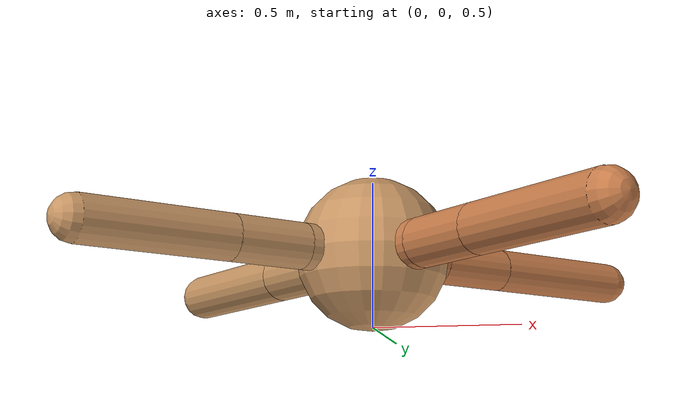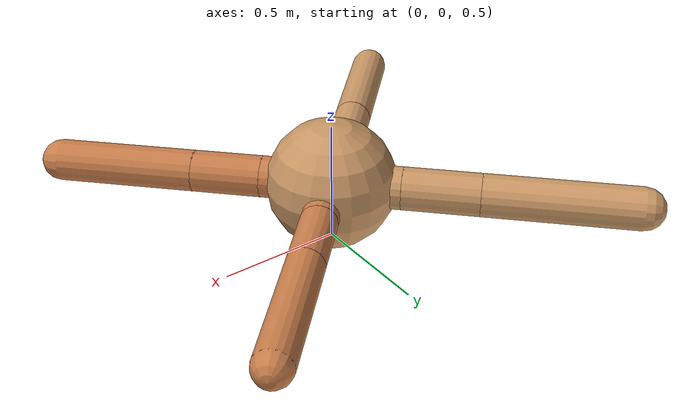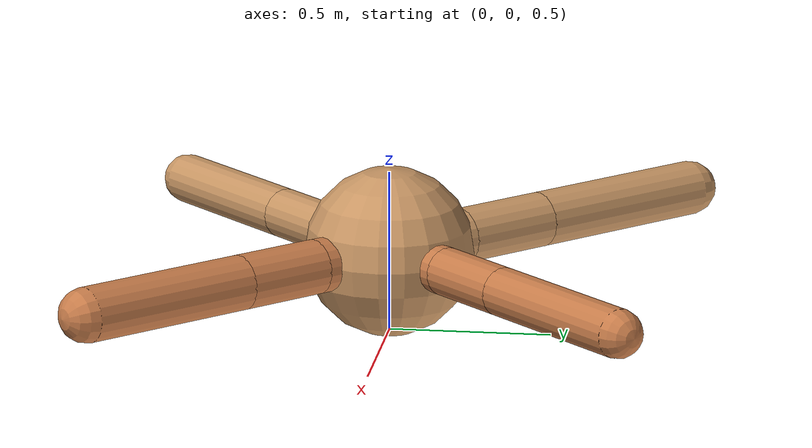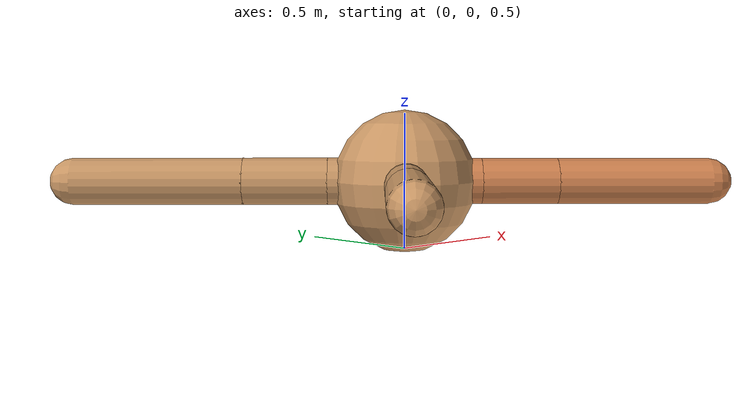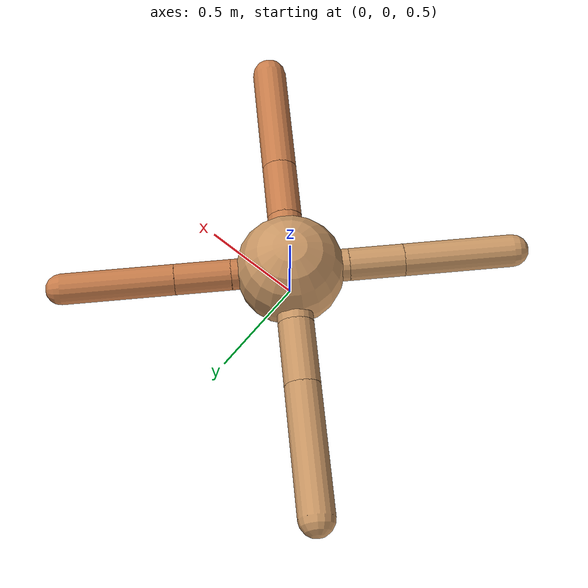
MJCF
<?xml version="1.0" ?>
<mujoco model="ant">

	<compiler angle="degree" coordinate="local" inertiafromgeom="true"/>

	<option integrator="RK4" timestep="0.01"/>

	<custom>

		<numeric data="0.0 0.0 0.55 1.0 0.0 0.0 0.0 0.0 1.0 0.0 -1.0 0.0 -1.0 0.0 1.0" name="init_qpos"/>

	</custom>

	<default>

		<joint armature="1" damping="1" limited="true"/>

		<geom conaffinity="0" condim="3" density="5.0" friction="1.5 0.1 0.1" margin="0.01" rgba="0.8 0.6 0.4 1"/>

	</default>

	<worldbody>

		<body name="torso" pos="0 0 0.75">

			<geom name="torso_geom" pos="0 0 0" size="0.26266542494118067" type="sphere"/>

			<!--joint armature="0" damping="0" limited="false" margin="0.01" name="root" pos="0 0 0" type="free"/-->

			<body name="front_left_leg" pos="0 0 0">

				<geom fromto="0 0 0 0.2 0.2 0" name="aux_1_geom" size="0.07424382656748561" type="capsule" rgba=".8 .5 .3 1"/>

				<body name="aux_1" pos="0.2 0.2 0">

					<joint axis="0 0 1" name="hip_1" pos="0.0 0.0 0.0" range="-40 40" type="hinge"/>

					<geom fromto="0 0 0 0.1911126237698246 0.1911126237698246 0" name="left_leg_geom" size="0.07424382656748561" type="capsule" rgba=".8 .5 .3 1"/>

					<body pos="0.1911126237698246 0.1911126237698246 0" name="front_left_foot">

						<joint axis="-1 1 0" name="ankle_1" pos="0.0 0.0 0.0" range="30 100" type="hinge"/>

						<geom fromto="0 0 0 0.3822252475396492 0.3822252475396492 0" name="left_ankle_geom" size="0.07424382656748561" type="capsule" rgba=".8 .5 .3 1"/>

					</body>

				</body>

			</body>

			<body name="front_right_leg" pos="0 0 0">

				<geom fromto="0 0 0 -0.2 0.2 0" name="aux_2_geom" size="0.08639933284497987" type="capsule"/>

				<body name="aux_2" pos="-0.2 0.2 0">

					<joint axis="0 0 1" name="hip_2" pos="0.0 0.0 0.0" range="-40 40" type="hinge"/>

					<geom fromto="0 0 0 -0.21925857406964125 0.21925857406964125 0" name="right_leg_geom" size="0.08639933284497987" type="capsule"/>

					<body pos="-0.21925857406964125 0.21925857406964125 0" name="front_right_foot">

						<joint axis="1 1 0" name="ankle_2" pos="0.0 0.0 0.0" range="-100 -30" type="hinge"/>

						<geom fromto="0 0 0 -0.4385171481392825 0.4385171481392825 0" name="right_ankle_geom" size="0.08639933284497987" type="capsule"/>

					</body>

				</body>

			</body>

			<body name="left_back_leg" pos="0 0 0">

				<geom fromto="0 0 0 -0.2 -0.2 0" name="aux_3_geom" size="0.0777824587290261" type="capsule"/>

				<body name="aux_3" pos="-0.2 -0.2 0">

					<joint axis="0 0 1" name="hip_3" pos="0.0 0.0 0.0" range="-40 40" type="hinge"/>

					<geom fromto="0 0 0 -0.18708938078368864 -0.18708938078368864 0" name="back_leg_geom" size="0.0777824587290261" type="capsule"/>

					<body pos="-0.18708938078368864 -0.18708938078368864 0" name="left_back_foot">

						<joint axis="-1 1 0" name="ankle_3" pos="0.0 0.0 0.0" range="-100 -30" type="hinge"/>

						<geom fromto="0 0 0 -0.3741787615673773 -0.3741787615673773 0" name="third_ankle_geom" size="0.0777824587290261" type="capsule"/>

					</body>

				</body>

			</body>

			<body name="right_back_leg" pos="0 0 0">

				<geom fromto="0 0 0 0.2 -0.2 0" name="aux_4_geom" size="0.08421037106265628" type="capsule" rgba=".8 .5 .3 1"/>

				<body name="aux_4" pos="0.2 -0.2 0">

					<joint axis="0 0 1" name="hip_4" pos="0.0 0.0 0.0" range="-40 40" type="hinge"/>

					<geom fromto="0 0 0 0.19768090295269916 -0.19768090295269916 0" name="rightback_leg_geom" size="0.08421037106265628" type="capsule" rgba=".8 .5 .3 1"/>

					<body pos="0.19768090295269916 -0.19768090295269916 0" name="right_back_foot">

						<joint axis="1 1 0" name="ankle_4" pos="0.0 0.0 0.0" range="30 100" type="hinge"/>

						<geom fromto="0 0 0 0.3953618059053983 -0.3953618059053983 0" name="fourth_ankle_geom" size="0.08421037106265628" type="capsule" rgba=".8 .5 .3 1"/>

					</body>

				</body>

			</body>

		</body>

	</worldbody>

	<actuator>

		<motor ctrllimited="true" ctrlrange="-1.0 1.0" joint="hip_4" gear="150"/>

		<motor ctrllimited="true" ctrlrange="-1.0 1.0" joint="ankle_4" gear="150"/>

		<motor ctrllimited="true" ctrlrange="-1.0 1.0" joint="hip_1" gear="150"/>

		<motor ctrllimited="true" ctrlrange="-1.0 1.0" joint="ankle_1" gear="150"/>

		<motor ctrllimited="true" ctrlrange="-1.0 1.0" joint="hip_2" gear="150"/>

		<motor ctrllimited="true" ctrlrange="-1.0 1.0" joint="ankle_2" gear="150"/>

		<motor ctrllimited="true" ctrlrange="-1.0 1.0" joint="hip_3" gear="150"/>

		<motor ctrllimited="true" ctrlrange="-1.0 1.0" joint="ankle_3" gear="150"/>

	</actuator>

</mujoco>
